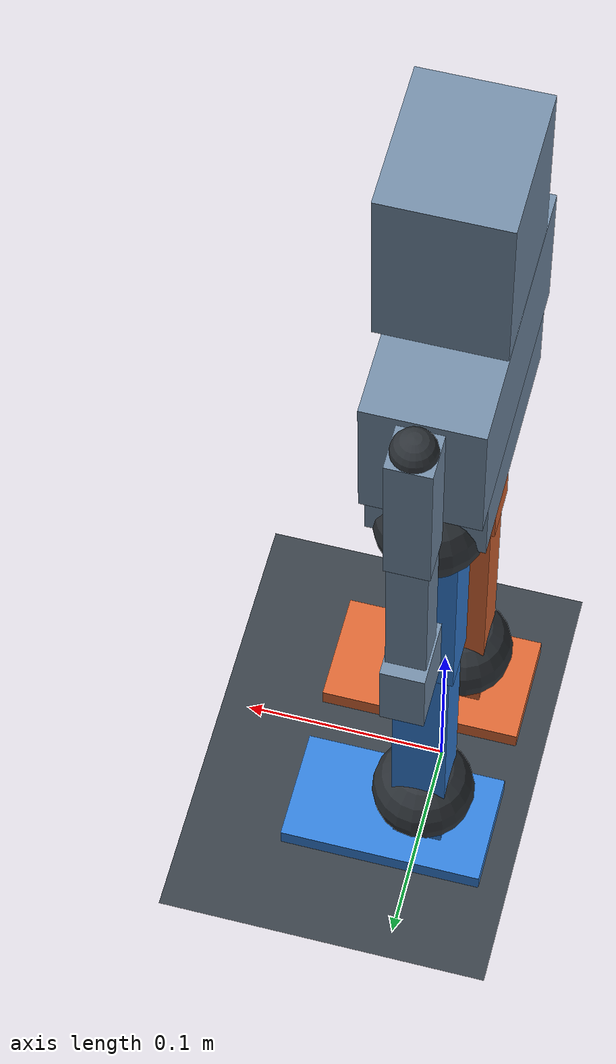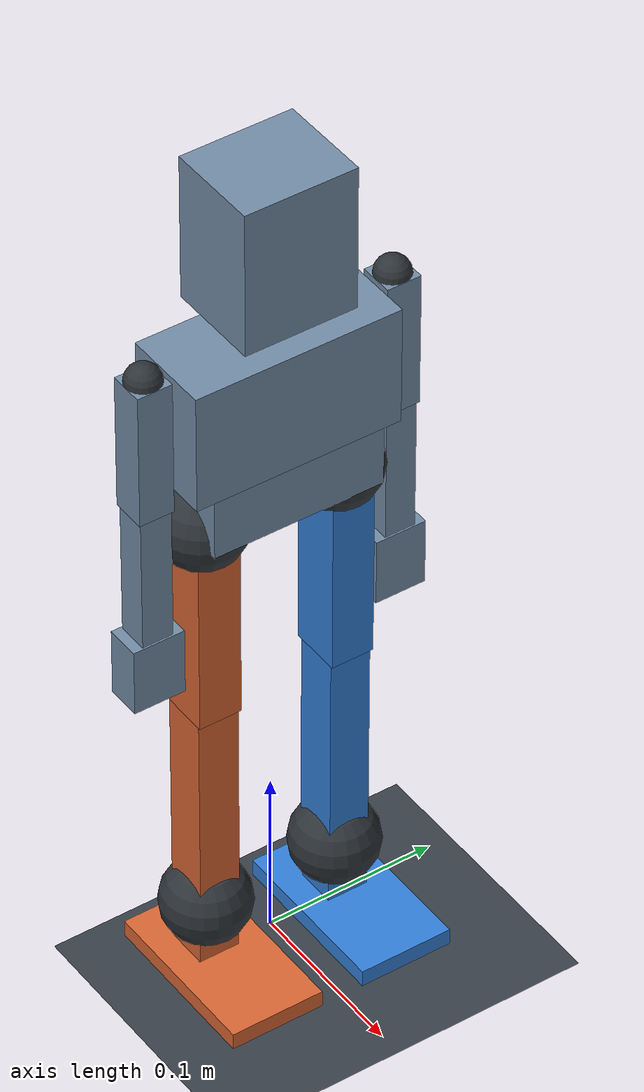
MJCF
<?xml version='1.0' encoding='utf-8'?>
<mujoco model="TS20 v2 - torque control; estimated mechanics">
  <compiler angle="radian" autolimits="true" inertiafromgeom="true" />
  <option timestep="0.001" integrator="implicitfast" gravity="0 0 -9.81" />
  <size nuser_actuator="4" />
  <default>
    <joint type="hinge" damping="0.02" armature="0.00001" />
    <geom contype="2" conaffinity="1" friction="0.8 0.005 0.0001" rgba="0.45 0.55 0.65 1" />
    <default class="ts20_50">
      <general gear="1" ctrllimited="false" biastype="affine" biasprm="0 -12 -0.4" forcelimited="true" forcerange="-2 2" user="0.7 31.4 50 0.3" />
    </default>
    <default class="ts20_100">
      <general gear="1" ctrllimited="false" biastype="affine" biasprm="0 -12 -0.4" forcelimited="true" forcerange="-4 4" user="1.5 15.7 100 0.3" />
    </default>
    <default class="htdw_5036">
      <general gear="1" ctrllimited="false" biastype="affine" biasprm="0 -12 -0.4" forcelimited="true" forcerange="-6 6" user="6 7.853981633974483 36 0.3" />
    </default>
  </default>
  <visual>
    <global azimuth="135" elevation="-15" />
    <headlight diffuse="0.7 0.7 0.7" />
  </visual>
  <worldbody>
    <light pos="0 -1 2" dir="0 0 -1" />
    <geom name="floor" type="plane" size="2 2 0.05" contype="1" conaffinity="2" rgba="0.22 0.25 0.28 1" />
    <body name="pelvis" pos="0 0 0.295">
      <freejoint name="floating_base" />
      <geom name="pelvis_shape" type="box" pos="0 0 0.0175" size="0.026 0.05 0.0175" mass="0.35" />
      <body name="left_hip_yaw_link" pos="0 0.04 0">
        <joint name="left_hip_yaw" axis="0 0 1" range="-0.78539816 0.78539816" />
        <geom name="left_hip_yaw_housing" type="sphere" size="0.01" mass="0.035" rgba="0.18 0.2 0.22 1" />
        <body name="left_hip_roll_link" pos="0 0 0">
          <joint name="left_hip_roll" axis="1 0 0" range="-0.61086524 0.61086524" />
          <geom name="left_hip_roll_housing" type="sphere" size="0.025" mass="0.323" rgba="0.18 0.2 0.22 1" />
          <body name="left_hip_pitch_link" pos="0 0 0">
            <joint name="left_hip_pitch" axis="0 1 0" range="-1.57079633 0.78539816" />
            <geom name="left_thigh" type="box" pos="0 0 -0.06" size="0.015 0.0125 0.06" mass="0.18" rgba="0.2 0.5 0.85 1" />
            <body name="left_knee_link" pos="0 0 -0.12">
              <joint name="left_knee" axis="0 1 0" range="0.00000000 2.44346095" />
              <geom name="left_shank" type="box" pos="0 0 -0.0675" size="0.013 0.012 0.0675" mass="0.44800000000000006" rgba="0.2 0.5 0.85 1" />
              <body name="left_ankle_pitch_link" pos="0 0 -0.135">
                <joint name="left_ankle_pitch" axis="0 1 0" range="-1.04719755 0.78539816" />
                <geom name="left_ankle_pitch_housing" type="sphere" size="0.025" mass="0.323" rgba="0.18 0.2 0.22 1" />
                <body name="left_ankle_roll_link" pos="0 0 0">
                  <joint name="left_ankle_roll" axis="1 0 0" range="-0.52359878 0.52359878" />
                  <geom name="left_ankle_block" type="box" pos="0 0 -0.015" size="0.012 0.012 0.015" mass="0.035" rgba="0.2 0.5 0.85 1" />
                  <geom name="left_foot" type="box" pos="0.015 0 -0.035" size="0.05 0.0275 0.005" mass="0.085" rgba="0.2 0.5 0.85 1" />
                  <site name="left_sole" type="box" pos="0.015 0 -0.039" size="0.049 0.0265 0.002" rgba="0 1 0 0.2" />
                  <geom name="envelope_left_ankle_roll" type="cylinder" size=".01 .0175" pos="0.0 0.0 0.0" quat="0.7071067811865475 0.0 0.7071067811865475 0.0" mass="0" contype="0" conaffinity="0" group="4" rgba="0.95 0.15 0.15 0.35" />
                </body>
                <geom name="envelope_left_ankle_pitch" type="cylinder" size=".025 .0237" pos="0.0 0.0 0.0" quat="0.7071067811865475 -0.7071067811865475 0.0 0.0" mass="0" contype="0" conaffinity="0" group="4" rgba="0.95 0.15 0.15 0.35" />
              </body>
              <geom name="envelope_left_knee" type="cylinder" size=".025 .0237" pos="0.0 0.0 0.0" quat="0.7071067811865475 -0.7071067811865475 0.0 0.0" mass="0" contype="0" conaffinity="0" group="4" rgba="0.95 0.15 0.15 0.35" />
            </body>
            <geom name="envelope_left_hip_pitch" type="cylinder" size=".01 .0175" pos="0.0 0.0 0.0" quat="0.7071067811865475 -0.7071067811865475 0.0 0.0" mass="0" contype="0" conaffinity="0" group="4" rgba="0.95 0.15 0.15 0.35" />
          </body>
          <geom name="envelope_left_hip_roll" type="cylinder" size=".025 .0237" pos="0.0 0.0 0.0" quat="0.7071067811865475 0.0 0.7071067811865475 0.0" mass="0" contype="0" conaffinity="0" group="4" rgba="0.95 0.15 0.15 0.35" />
        </body>
        <geom name="envelope_left_hip_yaw" type="cylinder" size=".01 .0175" pos="0.0 0.0 0.0" quat="1.0 0.0 0.0 0.0" mass="0" contype="0" conaffinity="0" group="4" rgba="0.95 0.15 0.15 0.35" />
      </body>
      <body name="right_hip_yaw_link" pos="0 -0.04 0">
        <joint name="right_hip_yaw" axis="0 0 1" range="-0.78539816 0.78539816" />
        <geom name="right_hip_yaw_housing" type="sphere" size="0.01" mass="0.035" rgba="0.18 0.2 0.22 1" />
        <body name="right_hip_roll_link" pos="0 0 0">
          <joint name="right_hip_roll" axis="1 0 0" range="-0.61086524 0.61086524" />
          <geom name="right_hip_roll_housing" type="sphere" size="0.025" mass="0.323" rgba="0.18 0.2 0.22 1" />
          <body name="right_hip_pitch_link" pos="0 0 0">
            <joint name="right_hip_pitch" axis="0 1 0" range="-1.57079633 0.78539816" />
            <geom name="right_thigh" type="box" pos="0 0 -0.06" size="0.015 0.0125 0.06" mass="0.18" rgba="0.85 0.4 0.2 1" />
            <body name="right_knee_link" pos="0 0 -0.12">
              <joint name="right_knee" axis="0 1 0" range="0.00000000 2.44346095" />
              <geom name="right_shank" type="box" pos="0 0 -0.0675" size="0.013 0.012 0.0675" mass="0.44800000000000006" rgba="0.85 0.4 0.2 1" />
              <body name="right_ankle_pitch_link" pos="0 0 -0.135">
                <joint name="right_ankle_pitch" axis="0 1 0" range="-1.04719755 0.78539816" />
                <geom name="right_ankle_pitch_housing" type="sphere" size="0.025" mass="0.323" rgba="0.18 0.2 0.22 1" />
                <body name="right_ankle_roll_link" pos="0 0 0">
                  <joint name="right_ankle_roll" axis="1 0 0" range="-0.52359878 0.52359878" />
                  <geom name="right_ankle_block" type="box" pos="0 0 -0.015" size="0.012 0.012 0.015" mass="0.035" rgba="0.85 0.4 0.2 1" />
                  <geom name="right_foot" type="box" pos="0.015 0 -0.035" size="0.05 0.0275 0.005" mass="0.085" rgba="0.85 0.4 0.2 1" />
                  <site name="right_sole" type="box" pos="0.015 0 -0.039" size="0.049 0.0265 0.002" rgba="0 1 0 0.2" />
                  <geom name="envelope_right_ankle_roll" type="cylinder" size=".01 .0175" pos="0.0 0.0 0.0" quat="0.7071067811865475 0.0 0.7071067811865475 0.0" mass="0" contype="0" conaffinity="0" group="4" rgba="0.95 0.15 0.15 0.35" />
                </body>
                <geom name="envelope_right_ankle_pitch" type="cylinder" size=".025 .0237" pos="0.0 0.0 0.0" quat="0.7071067811865475 -0.7071067811865475 0.0 0.0" mass="0" contype="0" conaffinity="0" group="4" rgba="0.95 0.15 0.15 0.35" />
              </body>
              <geom name="envelope_right_knee" type="cylinder" size=".025 .0237" pos="0.0 0.0 0.0" quat="0.7071067811865475 -0.7071067811865475 0.0 0.0" mass="0" contype="0" conaffinity="0" group="4" rgba="0.95 0.15 0.15 0.35" />
            </body>
            <geom name="envelope_right_hip_pitch" type="cylinder" size=".01 .0175" pos="0.0 0.0 0.0" quat="0.7071067811865475 -0.7071067811865475 0.0 0.0" mass="0" contype="0" conaffinity="0" group="4" rgba="0.95 0.15 0.15 0.35" />
          </body>
          <geom name="envelope_right_hip_roll" type="cylinder" size=".025 .0237" pos="0.0 0.0 0.0" quat="0.7071067811865475 0.0 0.7071067811865475 0.0" mass="0" contype="0" conaffinity="0" group="4" rgba="0.95 0.15 0.15 0.35" />
        </body>
        <geom name="envelope_right_hip_yaw" type="cylinder" size=".01 .0175" pos="0.0 0.0 0.0" quat="1.0 0.0 0.0 0.0" mass="0" contype="0" conaffinity="0" group="4" rgba="0.95 0.15 0.15 0.35" />
      </body>
      <body name="waist_yaw_link" pos="0 0 0.035">
        <joint name="waist_yaw" axis="0 0 1" range="-0.78539816 0.78539816" />
        <geom name="torso_shape" type="box" pos="0 0 0.035" size="0.026 0.06 0.035" mass="0.6" />
        <body name="left_shoulder_pitch_link" pos="0 0.0725 0.07">
          <joint name="left_shoulder_pitch" axis="0 1 0" range="-2.61799388 1.57079633" />
          <geom name="left_shoulder_pitch_housing" type="sphere" size="0.01" mass="0.035" rgba="0.18 0.2 0.22 1" />
          <body name="left_shoulder_roll_link" pos="0 0 0">
            <joint name="left_shoulder_roll" axis="1 0 0" range="-1.74532925 1.74532925" />
            <geom name="left_shoulder_roll_housing" type="sphere" size="0.01" mass="0.035" rgba="0.18 0.2 0.22 1" />
            <body name="left_shoulder_yaw_link" pos="0 0 0">
              <joint name="left_shoulder_yaw" axis="0 0 1" range="-1.57079633 1.57079633" />
              <geom name="left_upper_arm" type="box" pos="0 0 -0.04" size="0.01 0.01 0.04" mass="0.075" />
              <body name="left_elbow_link" pos="0 0 -0.08">
                <joint name="left_elbow" axis="0 1 0" range="-2.44346095 0.00000000" />
                <geom name="left_forearm" type="box" pos="0 0 -0.04" size="0.009 0.009 0.04" mass="0.06" />
                <geom name="left_hand" type="box" pos="0 0 -0.10" size="0.01 0.015 0.02" mass="0.015" />
                <geom name="envelope_left_elbow" type="cylinder" size=".01 .0175" pos="0.0 0.0 0.0" quat="0.7071067811865475 -0.7071067811865475 0.0 0.0" mass="0" contype="0" conaffinity="0" group="4" rgba="0.95 0.15 0.15 0.35" />
              </body>
              <geom name="envelope_left_shoulder_yaw" type="cylinder" size=".01 .0175" pos="0.0 0.0 0.0" quat="1.0 0.0 0.0 0.0" mass="0" contype="0" conaffinity="0" group="4" rgba="0.95 0.15 0.15 0.35" />
            </body>
            <geom name="envelope_left_shoulder_roll" type="cylinder" size=".01 .0175" pos="0.0 0.0 0.0" quat="0.7071067811865475 0.0 0.7071067811865475 0.0" mass="0" contype="0" conaffinity="0" group="4" rgba="0.95 0.15 0.15 0.35" />
          </body>
          <geom name="envelope_left_shoulder_pitch" type="cylinder" size=".01 .0175" pos="0.0 0.0 0.0" quat="0.7071067811865475 -0.7071067811865475 0.0 0.0" mass="0" contype="0" conaffinity="0" group="4" rgba="0.95 0.15 0.15 0.35" />
        </body>
        <body name="right_shoulder_pitch_link" pos="0 -0.0725 0.07">
          <joint name="right_shoulder_pitch" axis="0 1 0" range="-2.61799388 1.57079633" />
          <geom name="right_shoulder_pitch_housing" type="sphere" size="0.01" mass="0.035" rgba="0.18 0.2 0.22 1" />
          <body name="right_shoulder_roll_link" pos="0 0 0">
            <joint name="right_shoulder_roll" axis="1 0 0" range="-1.74532925 1.74532925" />
            <geom name="right_shoulder_roll_housing" type="sphere" size="0.01" mass="0.035" rgba="0.18 0.2 0.22 1" />
            <body name="right_shoulder_yaw_link" pos="0 0 0">
              <joint name="right_shoulder_yaw" axis="0 0 1" range="-1.57079633 1.57079633" />
              <geom name="right_upper_arm" type="box" pos="0 0 -0.04" size="0.01 0.01 0.04" mass="0.075" />
              <body name="right_elbow_link" pos="0 0 -0.08">
                <joint name="right_elbow" axis="0 1 0" range="-2.44346095 0.00000000" />
                <geom name="right_forearm" type="box" pos="0 0 -0.04" size="0.009 0.009 0.04" mass="0.06" />
                <geom name="right_hand" type="box" pos="0 0 -0.10" size="0.01 0.015 0.02" mass="0.015" />
                <geom name="envelope_right_elbow" type="cylinder" size=".01 .0175" pos="0.0 0.0 0.0" quat="0.7071067811865475 -0.7071067811865475 0.0 0.0" mass="0" contype="0" conaffinity="0" group="4" rgba="0.95 0.15 0.15 0.35" />
              </body>
              <geom name="envelope_right_shoulder_yaw" type="cylinder" size=".01 .0175" pos="0.0 0.0 0.0" quat="1.0 0.0 0.0 0.0" mass="0" contype="0" conaffinity="0" group="4" rgba="0.95 0.15 0.15 0.35" />
            </body>
            <geom name="envelope_right_shoulder_roll" type="cylinder" size=".01 .0175" pos="0.0 0.0 0.0" quat="0.7071067811865475 0.0 0.7071067811865475 0.0" mass="0" contype="0" conaffinity="0" group="4" rgba="0.95 0.15 0.15 0.35" />
          </body>
          <geom name="envelope_right_shoulder_pitch" type="cylinder" size=".01 .0175" pos="0.0 0.0 0.0" quat="0.7071067811865475 -0.7071067811865475 0.0 0.0" mass="0" contype="0" conaffinity="0" group="4" rgba="0.95 0.15 0.15 0.35" />
        </body>
        <body name="neck_yaw_link" pos="0 0 0.085">
          <joint name="neck_yaw" axis="0 0 1" range="-1.22173048 1.22173048" />
          <geom name="neck_yaw_housing" type="sphere" size="0.01" mass="0.035" rgba="0.18 0.2 0.22 1" />
          <body name="neck_pitch_link" pos="0 0 0">
            <joint name="neck_pitch" axis="0 1 0" range="-0.61086524 0.61086524" />
            <geom name="head_shape" type="box" pos="0 0 0.0425" size="0.0275 0.0325 0.0425" mass="0.155" />
            <geom name="envelope_neck_pitch" type="cylinder" size=".01 .0175" pos="0.0 0.0 0.0" quat="0.7071067811865475 -0.7071067811865475 0.0 0.0" mass="0" contype="0" conaffinity="0" group="4" rgba="0.95 0.15 0.15 0.35" />
          </body>
          <geom name="envelope_neck_yaw" type="cylinder" size=".01 .0175" pos="0.0 0.0 0.0" quat="1.0 0.0 0.0 0.0" mass="0" contype="0" conaffinity="0" group="4" rgba="0.95 0.15 0.15 0.35" />
        </body>
        <geom name="envelope_waist_yaw" type="cylinder" size=".01 .0175" pos="0.0 0.0 0.0" quat="1.0 0.0 0.0 0.0" mass="0" contype="0" conaffinity="0" group="4" rgba="0.95 0.15 0.15 0.35" />
      </body>
    </body>
  </worldbody>
  <actuator>
    <general name="left_hip_yaw_servo" joint="left_hip_yaw" class="ts20_50" />
    <general name="left_hip_roll_servo" joint="left_hip_roll" class="htdw_5036" />
    <general name="left_hip_pitch_servo" joint="left_hip_pitch" class="ts20_100" />
    <general name="left_knee_servo" joint="left_knee" class="htdw_5036" />
    <general name="left_ankle_pitch_servo" joint="left_ankle_pitch" class="htdw_5036" />
    <general name="left_ankle_roll_servo" joint="left_ankle_roll" class="ts20_100" />
    <general name="right_hip_yaw_servo" joint="right_hip_yaw" class="ts20_50" />
    <general name="right_hip_roll_servo" joint="right_hip_roll" class="htdw_5036" />
    <general name="right_hip_pitch_servo" joint="right_hip_pitch" class="ts20_100" />
    <general name="right_knee_servo" joint="right_knee" class="htdw_5036" />
    <general name="right_ankle_pitch_servo" joint="right_ankle_pitch" class="htdw_5036" />
    <general name="right_ankle_roll_servo" joint="right_ankle_roll" class="ts20_100" />
    <general name="waist_yaw_servo" joint="waist_yaw" class="ts20_50" />
    <general name="left_shoulder_pitch_servo" joint="left_shoulder_pitch" class="ts20_50" />
    <general name="left_shoulder_roll_servo" joint="left_shoulder_roll" class="ts20_50" />
    <general name="left_shoulder_yaw_servo" joint="left_shoulder_yaw" class="ts20_50" />
    <general name="left_elbow_servo" joint="left_elbow" class="ts20_50" />
    <general name="right_shoulder_pitch_servo" joint="right_shoulder_pitch" class="ts20_50" />
    <general name="right_shoulder_roll_servo" joint="right_shoulder_roll" class="ts20_50" />
    <general name="right_shoulder_yaw_servo" joint="right_shoulder_yaw" class="ts20_50" />
    <general name="right_elbow_servo" joint="right_elbow" class="ts20_50" />
    <general name="neck_yaw_servo" joint="neck_yaw" class="ts20_50" />
    <general name="neck_pitch_servo" joint="neck_pitch" class="ts20_50" />
  </actuator>
  <sensor>
    <jointpos name="left_hip_yaw_angle" joint="left_hip_yaw" />
    <jointvel name="left_hip_yaw_speed" joint="left_hip_yaw" />
    <actuatorfrc name="left_hip_yaw_torque" actuator="left_hip_yaw_servo" />
    <jointpos name="left_hip_roll_angle" joint="left_hip_roll" />
    <jointvel name="left_hip_roll_speed" joint="left_hip_roll" />
    <actuatorfrc name="left_hip_roll_torque" actuator="left_hip_roll_servo" />
    <jointpos name="left_hip_pitch_angle" joint="left_hip_pitch" />
    <jointvel name="left_hip_pitch_speed" joint="left_hip_pitch" />
    <actuatorfrc name="left_hip_pitch_torque" actuator="left_hip_pitch_servo" />
    <jointpos name="left_knee_angle" joint="left_knee" />
    <jointvel name="left_knee_speed" joint="left_knee" />
    <actuatorfrc name="left_knee_torque" actuator="left_knee_servo" />
    <jointpos name="left_ankle_pitch_angle" joint="left_ankle_pitch" />
    <jointvel name="left_ankle_pitch_speed" joint="left_ankle_pitch" />
    <actuatorfrc name="left_ankle_pitch_torque" actuator="left_ankle_pitch_servo" />
    <jointpos name="left_ankle_roll_angle" joint="left_ankle_roll" />
    <jointvel name="left_ankle_roll_speed" joint="left_ankle_roll" />
    <actuatorfrc name="left_ankle_roll_torque" actuator="left_ankle_roll_servo" />
    <jointpos name="right_hip_yaw_angle" joint="right_hip_yaw" />
    <jointvel name="right_hip_yaw_speed" joint="right_hip_yaw" />
    <actuatorfrc name="right_hip_yaw_torque" actuator="right_hip_yaw_servo" />
    <jointpos name="right_hip_roll_angle" joint="right_hip_roll" />
    <jointvel name="right_hip_roll_speed" joint="right_hip_roll" />
    <actuatorfrc name="right_hip_roll_torque" actuator="right_hip_roll_servo" />
    <jointpos name="right_hip_pitch_angle" joint="right_hip_pitch" />
    <jointvel name="right_hip_pitch_speed" joint="right_hip_pitch" />
    <actuatorfrc name="right_hip_pitch_torque" actuator="right_hip_pitch_servo" />
    <jointpos name="right_knee_angle" joint="right_knee" />
    <jointvel name="right_knee_speed" joint="right_knee" />
    <actuatorfrc name="right_knee_torque" actuator="right_knee_servo" />
    <jointpos name="right_ankle_pitch_angle" joint="right_ankle_pitch" />
    <jointvel name="right_ankle_pitch_speed" joint="right_ankle_pitch" />
    <actuatorfrc name="right_ankle_pitch_torque" actuator="right_ankle_pitch_servo" />
    <jointpos name="right_ankle_roll_angle" joint="right_ankle_roll" />
    <jointvel name="right_ankle_roll_speed" joint="right_ankle_roll" />
    <actuatorfrc name="right_ankle_roll_torque" actuator="right_ankle_roll_servo" />
    <jointpos name="waist_yaw_angle" joint="waist_yaw" />
    <jointvel name="waist_yaw_speed" joint="waist_yaw" />
    <actuatorfrc name="waist_yaw_torque" actuator="waist_yaw_servo" />
    <jointpos name="left_shoulder_pitch_angle" joint="left_shoulder_pitch" />
    <jointvel name="left_shoulder_pitch_speed" joint="left_shoulder_pitch" />
    <actuatorfrc name="left_shoulder_pitch_torque" actuator="left_shoulder_pitch_servo" />
    <jointpos name="left_shoulder_roll_angle" joint="left_shoulder_roll" />
    <jointvel name="left_shoulder_roll_speed" joint="left_shoulder_roll" />
    <actuatorfrc name="left_shoulder_roll_torque" actuator="left_shoulder_roll_servo" />
    <jointpos name="left_shoulder_yaw_angle" joint="left_shoulder_yaw" />
    <jointvel name="left_shoulder_yaw_speed" joint="left_shoulder_yaw" />
    <actuatorfrc name="left_shoulder_yaw_torque" actuator="left_shoulder_yaw_servo" />
    <jointpos name="left_elbow_angle" joint="left_elbow" />
    <jointvel name="left_elbow_speed" joint="left_elbow" />
    <actuatorfrc name="left_elbow_torque" actuator="left_elbow_servo" />
    <jointpos name="right_shoulder_pitch_angle" joint="right_shoulder_pitch" />
    <jointvel name="right_shoulder_pitch_speed" joint="right_shoulder_pitch" />
    <actuatorfrc name="right_shoulder_pitch_torque" actuator="right_shoulder_pitch_servo" />
    <jointpos name="right_shoulder_roll_angle" joint="right_shoulder_roll" />
    <jointvel name="right_shoulder_roll_speed" joint="right_shoulder_roll" />
    <actuatorfrc name="right_shoulder_roll_torque" actuator="right_shoulder_roll_servo" />
    <jointpos name="right_shoulder_yaw_angle" joint="right_shoulder_yaw" />
    <jointvel name="right_shoulder_yaw_speed" joint="right_shoulder_yaw" />
    <actuatorfrc name="right_shoulder_yaw_torque" actuator="right_shoulder_yaw_servo" />
    <jointpos name="right_elbow_angle" joint="right_elbow" />
    <jointvel name="right_elbow_speed" joint="right_elbow" />
    <actuatorfrc name="right_elbow_torque" actuator="right_elbow_servo" />
    <jointpos name="neck_yaw_angle" joint="neck_yaw" />
    <jointvel name="neck_yaw_speed" joint="neck_yaw" />
    <actuatorfrc name="neck_yaw_torque" actuator="neck_yaw_servo" />
    <jointpos name="neck_pitch_angle" joint="neck_pitch" />
    <jointvel name="neck_pitch_speed" joint="neck_pitch" />
    <actuatorfrc name="neck_pitch_torque" actuator="neck_pitch_servo" />
    <touch name="left_foot_contact" site="left_sole" />
    <touch name="right_foot_contact" site="right_sole" />
  </sensor>
  <keyframe>
    <key name="stand" qpos="0 0 0.295 1 0 0 0 0.0 0.0 0.0 0.0 0.0 0.0 0.0 0.0 0.0 0.0 0.0 0.0 0.0 0.0 0.0 0.0 0.0 0.0 0.0 0.0 0.0 0.0 0.0" ctrl="0 0 0 0 0 0 0 0 0 0 0 0 0 0 0 0 0 0 0 0 0 0 0" />
    <key name="shallow_squat" qpos="0.0037110593888178473 0 0.2870726675362144 1 0 0 0 0 0 -0.25 0.5 -0.25 0 0 0 -0.25 0.5 -0.25 0 0 0 0 0 0 0 0 0 0 0 0" ctrl="0 0 0 0 0 0 0 0 0 0 0 0 0 0 0 0 0 0 0 0 0 0 0" />
  </keyframe>
</mujoco>
